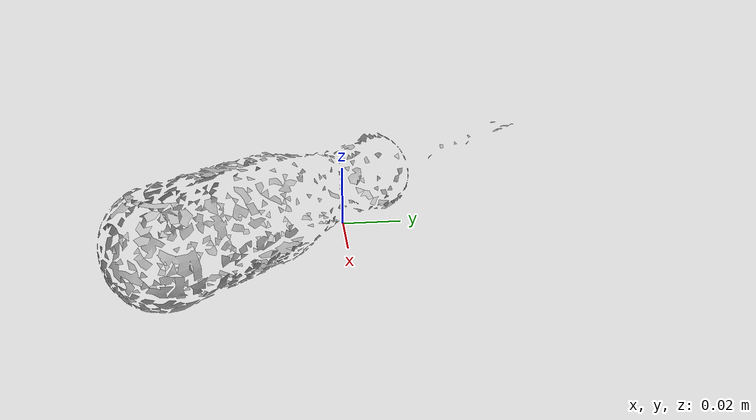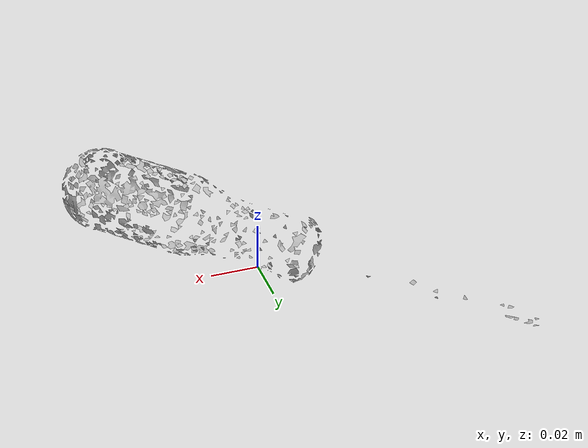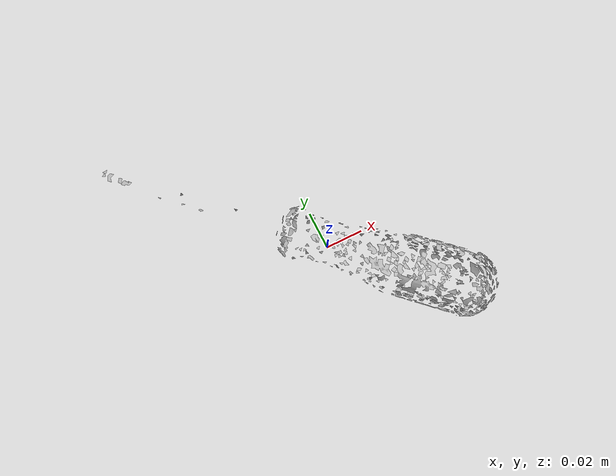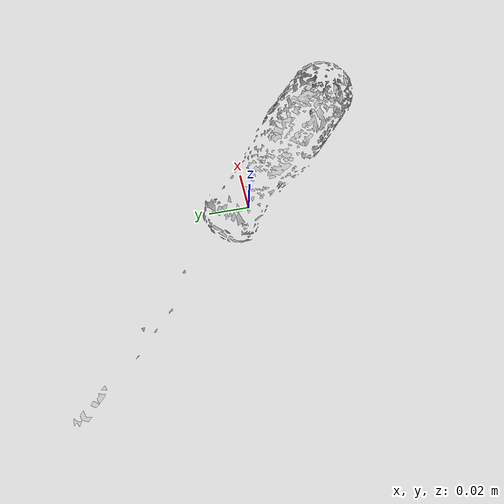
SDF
<?xml version="1.0" ?>
<sdf version="1.4">
  <model name='ycb_044_flat_screwdriver'>
    <link name='body'>
      <inertial>
        <mass>0.0984</mass>
        <pose>0.0232283513379 -0.0227055605747 0.0161798216746 0 0 0</pose>
        <inertia>
          <ixx>7.07771623195e-05</ixx>
          <ixy>6.18555936747e-05</ixy>
          <ixz>-3.4193858639e-06</ixz>
          <iyy>7.53574424005e-05</iyy>
          <iyz>3.3082300637e-06</iyz>
          <izz>0.000134805756702</izz>
        </inertia>
      </inertial>
      <visual name='ycb_044_flat_screwdriver_visual'>
        <pose>0 0 0 0 0 0</pose>
        <geometry>
          <mesh>
            <uri>model://ycb_044_flat_screwdriver/meshes/textured.dae</uri>
          </mesh>
        </geometry>
      </visual>
      <collision name='ycb_044_flat_screwdriver_collision'>
        <pose>0 0 0 0 0 0</pose>
        <geometry>
          <mesh>
            <uri>model://ycb_044_flat_screwdriver/meshes/nontextured.stl</uri>
          </mesh>
        </geometry>
        <max_contacts>10</max_contacts>
      </collision>
    </link>
  </model>
</sdf>
